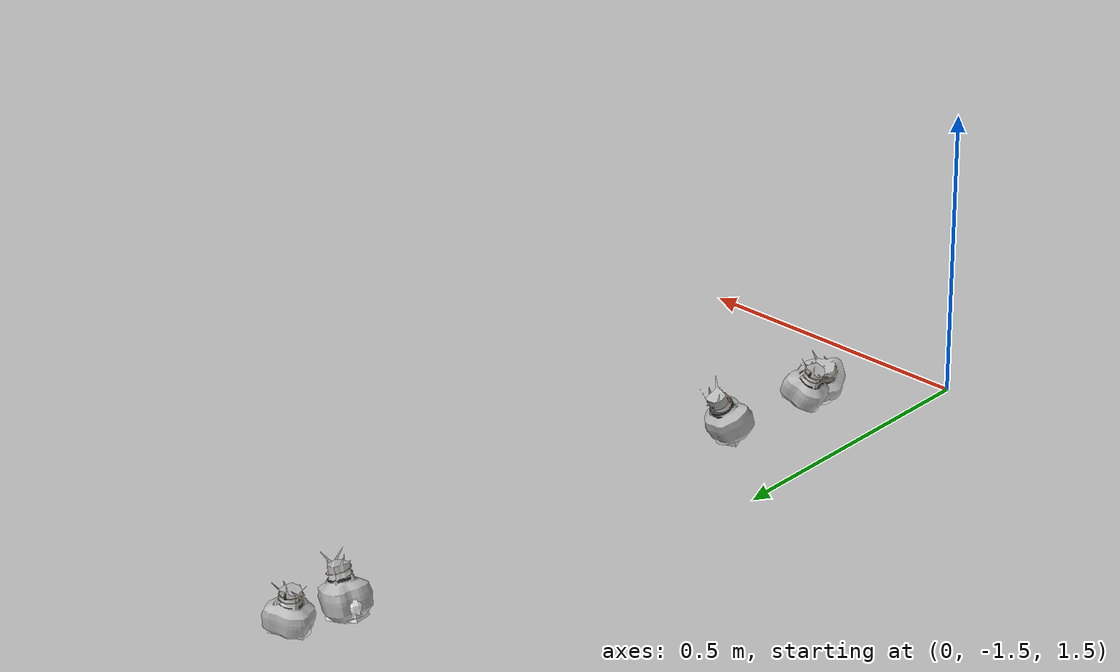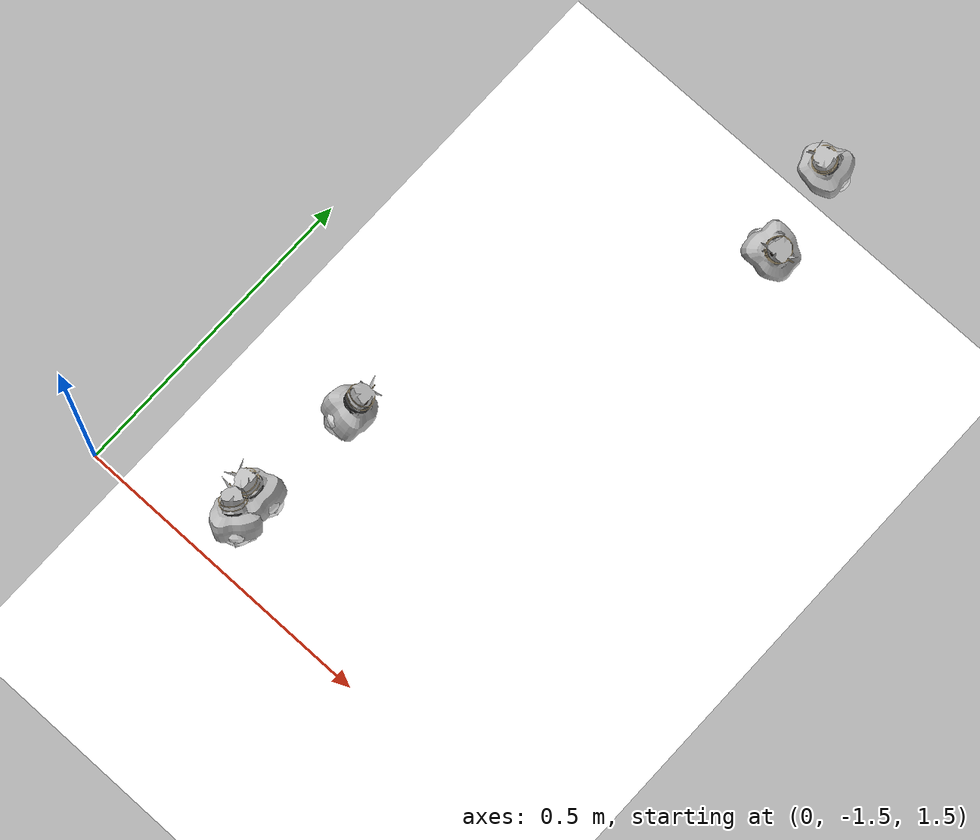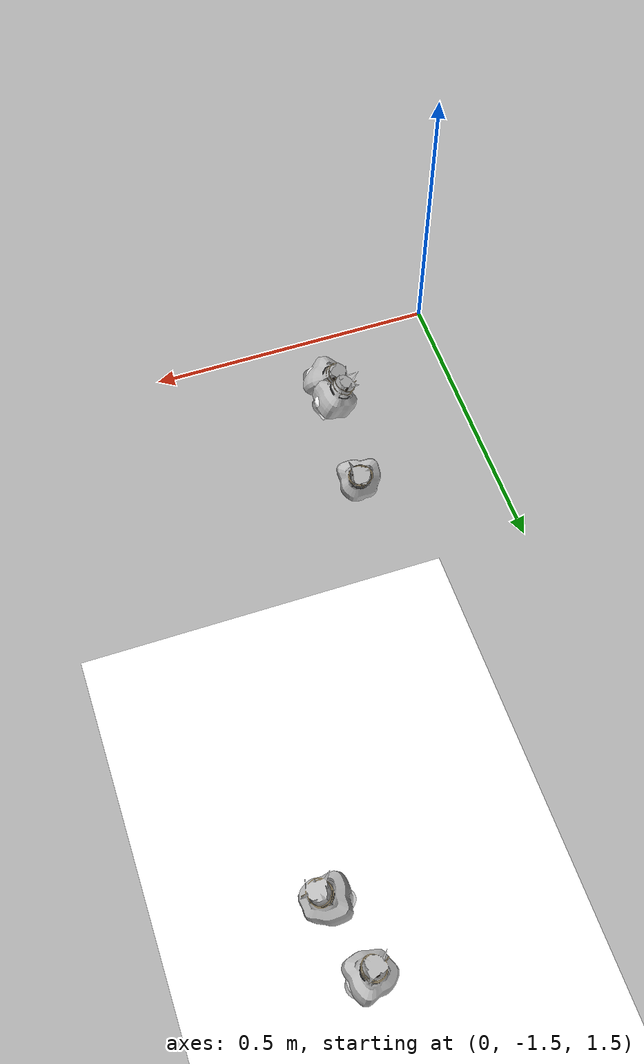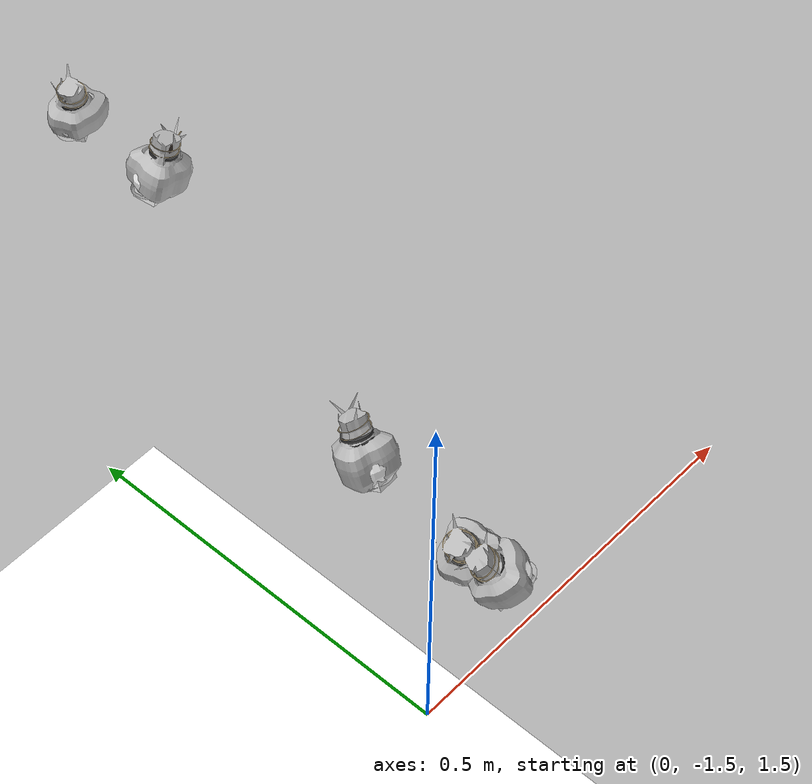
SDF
<sdf version="1.11">
 <world name="peach_orchard">
  <model name="ground">
   <static>true</static>
   <link name="link">
    <visual name="soil">
     <geometry><plane><normal>0 0 1</normal><size>32 22</size></plane></geometry>
     <material>
      <ambient>1 1 1 1</ambient>
      <diffuse>1 1 1 1</diffuse>
      <specular>0.1 0.1 0.1 1</specular>
      <pbr>
       <metal>
        <albedo_map>textures/soil_albedo.png</albedo_map>
        <normal_map type="tangent">textures/soil_normal.png</normal_map>
        <roughness>0.95</roughness>
        <metalness>0</metalness>
       </metal>
      </pbr>
     </material>
    </visual>
    <collision name="c_soil">
     <geometry><plane><normal>0 0 1</normal><size>32 22</size></plane></geometry>
    </collision>
   </link>
  </model>
  <model name="peach_tree_r2_t2_08">
   <pose>0.22 -1.43729 1.45 0 0.599076 2.44117</pose>
   <static>true</static>
   <link name="bag">
    <visual name="bag_mesh">
     <pose>0 0 0.038286 0 0 0</pose>
     <geometry>
      <mesh><uri>model://peach_sim/meshes/bagged_peach.glb</uri><scale>0.97067 1.10928 0.870137</scale></mesh>
     </geometry>
    </visual>
    <visual name="body">
     <pose>0 0 0.020286 0 0 0</pose>
     <geometry><ellipsoid><radii>0.0364001 0.0288413 0.0219089</radii></ellipsoid></geometry>
     <material>
      <ambient>1 1 1 1</ambient>
      <diffuse>1 1 1 1</diffuse>
      <specular>0.1 0.1 0.1 1</specular>
      <pbr>
       <metal>
        <albedo_map>textures/paper_bag_albedo.png</albedo_map>
        <normal_map type="tangent">textures/paper_bag_normal.png</normal_map>
        <roughness>0.72</roughness>
        <metalness>0</metalness>
       </metal>
      </pbr>
     </material>
    </visual>
    <visual name="bottom_fold">
     <pose>0 0 0.012 0 0 0.35</pose>
     <geometry><box><size>0.0564202 0.0331675 0.022</size></box></geometry>
     <material>
      <ambient>1 1 1 1</ambient>
      <diffuse>1 1 1 1</diffuse>
      <specular>0.1 0.1 0.1 1</specular>
      <pbr>
       <metal>
        <albedo_map>textures/paper_bag_albedo.png</albedo_map>
        <normal_map type="tangent">textures/paper_bag_normal.png</normal_map>
        <roughness>0.8</roughness>
        <metalness>0</metalness>
       </metal>
      </pbr>
     </material>
    </visual>
    <visual name="fruit">
     <pose>0 0 0.0196312 0 0 0</pose>
     <geometry><sphere><radius>0.0266564</radius></sphere></geometry>
     <material>
      <ambient>1 1 1 1</ambient>
      <diffuse>1 1 1 1</diffuse>
      <specular>0.1 0.1 0.1 1</specular>
      <pbr>
       <metal>
        <albedo_map>textures/fruit_skin_albedo.png</albedo_map>
        <normal_map type="tangent">textures/fruit_skin_normal.png</normal_map>
        <roughness>0.55</roughness>
        <metalness>0</metalness>
       </metal>
      </pbr>
     </material>
    </visual>
    <visual name="neck">
     <pose>0 0 0.0495721 0 0 0</pose>
     <geometry><cylinder><radius>0.013</radius><length>0.018</length></cylinder></geometry>
     <material>
      <ambient>1 1 1 1</ambient>
      <diffuse>1 1 1 1</diffuse>
      <specular>0.1 0.1 0.1 1</specular>
      <pbr>
       <metal>
        <albedo_map>textures/paper_bag_albedo.png</albedo_map>
        <normal_map type="tangent">textures/paper_bag_normal.png</normal_map>
        <roughness>0.75</roughness>
        <metalness>0</metalness>
       </metal>
      </pbr>
     </material>
    </visual>
    <visual name="gather">
     <pose>0 0 0.0305721 0 0 0</pose>
     <geometry><cylinder><radius>0.019</radius><length>0.02</length></cylinder></geometry>
     <material>
      <ambient>1 1 1 1</ambient>
      <diffuse>1 1 1 1</diffuse>
      <specular>0.1 0.1 0.1 1</specular>
      <pbr>
       <metal>
        <albedo_map>textures/paper_bag_albedo.png</albedo_map>
        <normal_map type="tangent">textures/paper_bag_normal.png</normal_map>
        <roughness>0.8</roughness>
        <metalness>0</metalness>
       </metal>
      </pbr>
     </material>
    </visual>
    <visual name="inner_paper">
     <pose>0 0 0.0545721 0 0 0</pose>
     <geometry><cylinder><radius>0.01</radius><length>0.008</length></cylinder></geometry>
     <material>
      <ambient>0.180392 0.14902 0.133333 1</ambient>
      <diffuse>0.180392 0.14902 0.133333 1</diffuse>
      <specular>0.1 0.1 0.1 1</specular>
     </material>
    </visual>
    <visual name="wire_0">
     <pose>0 0 0.0445721 0 0 0</pose>
     <geometry><cylinder><radius>0.0205</radius><length>0.0035</length></cylinder></geometry>
     <material>
      <ambient>0.25 0.25 0.25 1</ambient>
      <diffuse>0.25 0.25 0.25 1</diffuse>
      <specular>0.1 0.1 0.1 1</specular>
     </material>
    </visual>
    <visual name="wire_1">
     <pose>0 0 0.0515721 0 0 0</pose>
     <geometry><cylinder><radius>0.0205</radius><length>0.0035</length></cylinder></geometry>
     <material>
      <ambient>0.25 0.25 0.25 1</ambient>
      <diffuse>0.25 0.25 0.25 1</diffuse>
      <specular>0.1 0.1 0.1 1</specular>
     </material>
    </visual>
    <visual name="wire_tail">
     <pose>0.01 0 0.0525721 0 0.521618 0</pose>
     <geometry><cylinder><radius>0.0012</radius><length>0.026</length></cylinder></geometry>
     <material>
      <ambient>0.25 0.25 0.25 1</ambient>
      <diffuse>0.25 0.25 0.25 1</diffuse>
      <specular>0.1 0.1 0.1 1</specular>
     </material>
    </visual>
    <collision name="c_body">
     <pose>0 0 0.020286 0 0 0</pose>
     <geometry><cylinder><radius>0.0364001</radius><length>0.0405721</length></cylinder></geometry>
    </collision>
   </link>
  </model>
  <model name="peach_tree_r2_t2_09">
   <pose>0.22 -1.37916 1.45 0 0.483069 -3.07197</pose>
   <static>true</static>
   <link name="bag">
    <visual name="bag_mesh">
     <pose>0 0 0.0386958 0 0 -0</pose>
     <geometry>
      <mesh><uri>model://peach_sim/meshes/bagged_peach.glb</uri><scale>0.962592 1.04461 0.879451</scale></mesh>
     </geometry>
    </visual>
    <visual name="body">
     <pose>0 0 0.0206958 0 0 0</pose>
     <geometry><ellipsoid><radii>0.0360972 0.02716 0.0223515</radii></ellipsoid></geometry>
     <material>
      <ambient>1 1 1 1</ambient>
      <diffuse>1 1 1 1</diffuse>
      <specular>0.1 0.1 0.1 1</specular>
      <pbr>
       <metal>
        <albedo_map>textures/paper_bag_albedo.png</albedo_map>
        <normal_map type="tangent">textures/paper_bag_normal.png</normal_map>
        <roughness>0.72</roughness>
        <metalness>0</metalness>
       </metal>
      </pbr>
     </material>
    </visual>
    <visual name="bottom_fold">
     <pose>0 0 0.012 0 0 0.35</pose>
     <geometry><box><size>0.0559507 0.031234 0.022</size></box></geometry>
     <material>
      <ambient>1 1 1 1</ambient>
      <diffuse>1 1 1 1</diffuse>
      <specular>0.1 0.1 0.1 1</specular>
      <pbr>
       <metal>
        <albedo_map>textures/paper_bag_albedo.png</albedo_map>
        <normal_map type="tangent">textures/paper_bag_normal.png</normal_map>
        <roughness>0.8</roughness>
        <metalness>0</metalness>
       </metal>
      </pbr>
     </material>
    </visual>
    <visual name="fruit">
     <pose>0 0 0.0219081 0 0 0</pose>
     <geometry><sphere><radius>0.0290244</radius></sphere></geometry>
     <material>
      <ambient>1 1 1 1</ambient>
      <diffuse>1 1 1 1</diffuse>
      <specular>0.1 0.1 0.1 1</specular>
      <pbr>
       <metal>
        <albedo_map>textures/fruit_skin_albedo.png</albedo_map>
        <normal_map type="tangent">textures/fruit_skin_normal.png</normal_map>
        <roughness>0.55</roughness>
        <metalness>0</metalness>
       </metal>
      </pbr>
     </material>
    </visual>
    <visual name="neck">
     <pose>0 0 0.0503917 0 0 0</pose>
     <geometry><cylinder><radius>0.013</radius><length>0.018</length></cylinder></geometry>
     <material>
      <ambient>1 1 1 1</ambient>
      <diffuse>1 1 1 1</diffuse>
      <specular>0.1 0.1 0.1 1</specular>
      <pbr>
       <metal>
        <albedo_map>textures/paper_bag_albedo.png</albedo_map>
        <normal_map type="tangent">textures/paper_bag_normal.png</normal_map>
        <roughness>0.75</roughness>
        <metalness>0</metalness>
       </metal>
      </pbr>
     </material>
    </visual>
    <visual name="gather">
     <pose>0 0 0.0313917 0 0 0</pose>
     <geometry><cylinder><radius>0.019</radius><length>0.02</length></cylinder></geometry>
     <material>
      <ambient>1 1 1 1</ambient>
      <diffuse>1 1 1 1</diffuse>
      <specular>0.1 0.1 0.1 1</specular>
      <pbr>
       <metal>
        <albedo_map>textures/paper_bag_albedo.png</albedo_map>
        <normal_map type="tangent">textures/paper_bag_normal.png</normal_map>
        <roughness>0.8</roughness>
        <metalness>0</metalness>
       </metal>
      </pbr>
     </material>
    </visual>
    <visual name="inner_paper">
     <pose>0 0 0.0553917 0 0 0</pose>
     <geometry><cylinder><radius>0.01</radius><length>0.008</length></cylinder></geometry>
     <material>
      <ambient>0.180392 0.14902 0.133333 1</ambient>
      <diffuse>0.180392 0.14902 0.133333 1</diffuse>
      <specular>0.1 0.1 0.1 1</specular>
     </material>
    </visual>
    <visual name="wire_0">
     <pose>0 0 0.0453917 0 0 0</pose>
     <geometry><cylinder><radius>0.0205</radius><length>0.0035</length></cylinder></geometry>
     <material>
      <ambient>0.25 0.25 0.25 1</ambient>
      <diffuse>0.25 0.25 0.25 1</diffuse>
      <specular>0.1 0.1 0.1 1</specular>
     </material>
    </visual>
    <visual name="wire_1">
     <pose>0 0 0.0523917 0 0 0</pose>
     <geometry><cylinder><radius>0.0205</radius><length>0.0035</length></cylinder></geometry>
     <material>
      <ambient>0.25 0.25 0.25 1</ambient>
      <diffuse>0.25 0.25 0.25 1</diffuse>
      <specular>0.1 0.1 0.1 1</specular>
     </material>
    </visual>
    <visual name="wire_tail">
     <pose>0.01 0 0.0533917 0 0.521618 0</pose>
     <geometry><cylinder><radius>0.0012</radius><length>0.026</length></cylinder></geometry>
     <material>
      <ambient>0.25 0.25 0.25 1</ambient>
      <diffuse>0.25 0.25 0.25 1</diffuse>
      <specular>0.1 0.1 0.1 1</specular>
     </material>
    </visual>
    <collision name="c_body">
     <pose>0 0 0.0206958 0 0 0</pose>
     <geometry><cylinder><radius>0.0360972</radius><length>0.0413917</length></cylinder></geometry>
    </collision>
   </link>
  </model>
  <model name="peach_tree_r2_t2_10">
   <pose>0.22 -1.21642 1.45 0 0.459376 1.35812</pose>
   <static>true</static>
   <link name="bag">
    <visual name="bag_mesh">
     <pose>0 0 0.0474562 0 0 0</pose>
     <geometry>
      <mesh><uri>model://peach_sim/meshes/bagged_peach.glb</uri><scale>0.916852 1.08954 1.07855</scale></mesh>
     </geometry>
    </visual>
    <visual name="body">
     <pose>0 0 0.0294562 0 0 0</pose>
     <geometry><ellipsoid><radii>0.0343819 0.0283281 0.0318127</radii></ellipsoid></geometry>
     <material>
      <ambient>1 1 1 1</ambient>
      <diffuse>1 1 1 1</diffuse>
      <specular>0.1 0.1 0.1 1</specular>
      <pbr>
       <metal>
        <albedo_map>textures/paper_bag_albedo.png</albedo_map>
        <normal_map type="tangent">textures/paper_bag_normal.png</normal_map>
        <roughness>0.72</roughness>
        <metalness>0</metalness>
       </metal>
      </pbr>
     </material>
    </visual>
    <visual name="bottom_fold">
     <pose>0 0 0.012 0 0 0.35</pose>
     <geometry><box><size>0.053292 0.0325774 0.022</size></box></geometry>
     <material>
      <ambient>1 1 1 1</ambient>
      <diffuse>1 1 1 1</diffuse>
      <specular>0.1 0.1 0.1 1</specular>
      <pbr>
       <metal>
        <albedo_map>textures/paper_bag_albedo.png</albedo_map>
        <normal_map type="tangent">textures/paper_bag_normal.png</normal_map>
        <roughness>0.8</roughness>
        <metalness>0</metalness>
       </metal>
      </pbr>
     </material>
    </visual>
    <visual name="fruit">
     <pose>0 0 0.0216613 0 0 0</pose>
     <geometry><sphere><radius>0.0287677</radius></sphere></geometry>
     <material>
      <ambient>1 1 1 1</ambient>
      <diffuse>1 1 1 1</diffuse>
      <specular>0.1 0.1 0.1 1</specular>
      <pbr>
       <metal>
        <albedo_map>textures/fruit_skin_albedo.png</albedo_map>
        <normal_map type="tangent">textures/fruit_skin_normal.png</normal_map>
        <roughness>0.55</roughness>
        <metalness>0</metalness>
       </metal>
      </pbr>
     </material>
    </visual>
    <visual name="neck">
     <pose>0 0 0.0679124 0 0 0</pose>
     <geometry><cylinder><radius>0.013</radius><length>0.018</length></cylinder></geometry>
     <material>
      <ambient>1 1 1 1</ambient>
      <diffuse>1 1 1 1</diffuse>
      <specular>0.1 0.1 0.1 1</specular>
      <pbr>
       <metal>
        <albedo_map>textures/paper_bag_albedo.png</albedo_map>
        <normal_map type="tangent">textures/paper_bag_normal.png</normal_map>
        <roughness>0.75</roughness>
        <metalness>0</metalness>
       </metal>
      </pbr>
     </material>
    </visual>
    <visual name="gather">
     <pose>0 0 0.0489124 0 0 0</pose>
     <geometry><cylinder><radius>0.019</radius><length>0.02</length></cylinder></geometry>
     <material>
      <ambient>1 1 1 1</ambient>
      <diffuse>1 1 1 1</diffuse>
      <specular>0.1 0.1 0.1 1</specular>
      <pbr>
       <metal>
        <albedo_map>textures/paper_bag_albedo.png</albedo_map>
        <normal_map type="tangent">textures/paper_bag_normal.png</normal_map>
        <roughness>0.8</roughness>
        <metalness>0</metalness>
       </metal>
      </pbr>
     </material>
    </visual>
    <visual name="inner_paper">
     <pose>0 0 0.0729124 0 0 0</pose>
     <geometry><cylinder><radius>0.01</radius><length>0.008</length></cylinder></geometry>
     <material>
      <ambient>0.180392 0.14902 0.133333 1</ambient>
      <diffuse>0.180392 0.14902 0.133333 1</diffuse>
      <specular>0.1 0.1 0.1 1</specular>
     </material>
    </visual>
    <visual name="wire_0">
     <pose>0 0 0.0629124 0 0 0</pose>
     <geometry><cylinder><radius>0.0205</radius><length>0.0035</length></cylinder></geometry>
     <material>
      <ambient>0.25 0.25 0.25 1</ambient>
      <diffuse>0.25 0.25 0.25 1</diffuse>
      <specular>0.1 0.1 0.1 1</specular>
     </material>
    </visual>
    <visual name="wire_1">
     <pose>0 0 0.0699124 0 0 0</pose>
     <geometry><cylinder><radius>0.0205</radius><length>0.0035</length></cylinder></geometry>
     <material>
      <ambient>0.25 0.25 0.25 1</ambient>
      <diffuse>0.25 0.25 0.25 1</diffuse>
      <specular>0.1 0.1 0.1 1</specular>
     </material>
    </visual>
    <visual name="wire_tail">
     <pose>0.01 0 0.0709124 0 0.521618 0</pose>
     <geometry><cylinder><radius>0.0012</radius><length>0.026</length></cylinder></geometry>
     <material>
      <ambient>0.25 0.25 0.25 1</ambient>
      <diffuse>0.25 0.25 0.25 1</diffuse>
      <specular>0.1 0.1 0.1 1</specular>
     </material>
    </visual>
    <collision name="c_body">
     <pose>0 0 0.0294562 0 0 0</pose>
     <geometry><cylinder><radius>0.0343819</radius><length>0.0589124</length></cylinder></geometry>
    </collision>
   </link>
  </model>
  <model name="peach_tree_r2_t3_03">
   <pose>0.476651 -0.425783 1.32182 0 0.124477 -2.96739</pose>
   <static>true</static>
   <link name="bag">
    <visual name="bag_mesh">
     <pose>0 0 0.040647 0 0 -0</pose>
     <geometry>
      <mesh><uri>model://peach_sim/meshes/bagged_peach.glb</uri><scale>1.02007 1.12833 0.923796</scale></mesh>
     </geometry>
    </visual>
    <visual name="body">
     <pose>0 0 0.022647 0 0 0</pose>
     <geometry><ellipsoid><radii>0.0382525 0.0293366 0.0244588</radii></ellipsoid></geometry>
     <material>
      <ambient>1 1 1 1</ambient>
      <diffuse>1 1 1 1</diffuse>
      <specular>0.1 0.1 0.1 1</specular>
      <pbr>
       <metal>
        <albedo_map>textures/paper_bag_albedo.png</albedo_map>
        <normal_map type="tangent">textures/paper_bag_normal.png</normal_map>
        <roughness>0.72</roughness>
        <metalness>0</metalness>
       </metal>
      </pbr>
     </material>
    </visual>
    <visual name="bottom_fold">
     <pose>0 0 0.012 0 0 0.35</pose>
     <geometry><box><size>0.0592914 0.0337371 0.022</size></box></geometry>
     <material>
      <ambient>1 1 1 1</ambient>
      <diffuse>1 1 1 1</diffuse>
      <specular>0.1 0.1 0.1 1</specular>
      <pbr>
       <metal>
        <albedo_map>textures/paper_bag_albedo.png</albedo_map>
        <normal_map type="tangent">textures/paper_bag_normal.png</normal_map>
        <roughness>0.8</roughness>
        <metalness>0</metalness>
       </metal>
      </pbr>
     </material>
    </visual>
    <visual name="fruit">
     <pose>0 0 0.0213229 0 0 0</pose>
     <geometry><sphere><radius>0.0284158</radius></sphere></geometry>
     <material>
      <ambient>1 1 1 1</ambient>
      <diffuse>1 1 1 1</diffuse>
      <specular>0.1 0.1 0.1 1</specular>
      <pbr>
       <metal>
        <albedo_map>textures/fruit_skin_albedo.png</albedo_map>
        <normal_map type="tangent">textures/fruit_skin_normal.png</normal_map>
        <roughness>0.55</roughness>
        <metalness>0</metalness>
       </metal>
      </pbr>
     </material>
    </visual>
    <visual name="neck">
     <pose>0 0 0.0542941 0 0 0</pose>
     <geometry><cylinder><radius>0.013</radius><length>0.018</length></cylinder></geometry>
     <material>
      <ambient>1 1 1 1</ambient>
      <diffuse>1 1 1 1</diffuse>
      <specular>0.1 0.1 0.1 1</specular>
      <pbr>
       <metal>
        <albedo_map>textures/paper_bag_albedo.png</albedo_map>
        <normal_map type="tangent">textures/paper_bag_normal.png</normal_map>
        <roughness>0.75</roughness>
        <metalness>0</metalness>
       </metal>
      </pbr>
     </material>
    </visual>
    <visual name="gather">
     <pose>0 0 0.0352941 0 0 0</pose>
     <geometry><cylinder><radius>0.019</radius><length>0.02</length></cylinder></geometry>
     <material>
      <ambient>1 1 1 1</ambient>
      <diffuse>1 1 1 1</diffuse>
      <specular>0.1 0.1 0.1 1</specular>
      <pbr>
       <metal>
        <albedo_map>textures/paper_bag_albedo.png</albedo_map>
        <normal_map type="tangent">textures/paper_bag_normal.png</normal_map>
        <roughness>0.8</roughness>
        <metalness>0</metalness>
       </metal>
      </pbr>
     </material>
    </visual>
    <visual name="inner_paper">
     <pose>0 0 0.0592941 0 0 0</pose>
     <geometry><cylinder><radius>0.01</radius><length>0.008</length></cylinder></geometry>
     <material>
      <ambient>0.180392 0.14902 0.133333 1</ambient>
      <diffuse>0.180392 0.14902 0.133333 1</diffuse>
      <specular>0.1 0.1 0.1 1</specular>
     </material>
    </visual>
    <visual name="wire_0">
     <pose>0 0 0.0492941 0 0 0</pose>
     <geometry><cylinder><radius>0.0205</radius><length>0.0035</length></cylinder></geometry>
     <material>
      <ambient>0.25 0.25 0.25 1</ambient>
      <diffuse>0.25 0.25 0.25 1</diffuse>
      <specular>0.1 0.1 0.1 1</specular>
     </material>
    </visual>
    <visual name="wire_1">
     <pose>0 0 0.0562941 0 0 0</pose>
     <geometry><cylinder><radius>0.0205</radius><length>0.0035</length></cylinder></geometry>
     <material>
      <ambient>0.25 0.25 0.25 1</ambient>
      <diffuse>0.25 0.25 0.25 1</diffuse>
      <specular>0.1 0.1 0.1 1</specular>
     </material>
    </visual>
    <visual name="wire_tail">
     <pose>0.01 0 0.0572941 0 0.521618 0</pose>
     <geometry><cylinder><radius>0.0012</radius><length>0.026</length></cylinder></geometry>
     <material>
      <ambient>0.25 0.25 0.25 1</ambient>
      <diffuse>0.25 0.25 0.25 1</diffuse>
      <specular>0.1 0.1 0.1 1</specular>
     </material>
    </visual>
    <collision name="c_body">
     <pose>0 0 0.022647 0 0 0</pose>
     <geometry><cylinder><radius>0.0382525</radius><length>0.0452941</length></cylinder></geometry>
    </collision>
   </link>
  </model>
  <model name="peach_tree_r2_t3_04">
   <pose>0.48535 -0.565804 1.2781 0 0.255302 -0.15871</pose>
   <static>true</static>
   <link name="bag">
    <visual name="bag_mesh">
     <pose>0 0 0.0479237 0 0 -0</pose>
     <geometry>
      <mesh><uri>model://peach_sim/meshes/bagged_peach.glb</uri><scale>1.07961 1.16192 1.08917</scale></mesh>
     </geometry>
    </visual>
    <visual name="body">
     <pose>0 0 0.0299237 0 0 0</pose>
     <geometry><ellipsoid><radii>0.0404855 0.03021 0.0323176</radii></ellipsoid></geometry>
     <material>
      <ambient>1 1 1 1</ambient>
      <diffuse>1 1 1 1</diffuse>
      <specular>0.1 0.1 0.1 1</specular>
      <pbr>
       <metal>
        <albedo_map>textures/paper_bag_albedo.png</albedo_map>
        <normal_map type="tangent">textures/paper_bag_normal.png</normal_map>
        <roughness>0.72</roughness>
        <metalness>0</metalness>
       </metal>
      </pbr>
     </material>
    </visual>
    <visual name="bottom_fold">
     <pose>0 0 0.012 0 0 0.35</pose>
     <geometry><box><size>0.0627525 0.0347415 0.022</size></box></geometry>
     <material>
      <ambient>1 1 1 1</ambient>
      <diffuse>1 1 1 1</diffuse>
      <specular>0.1 0.1 0.1 1</specular>
      <pbr>
       <metal>
        <albedo_map>textures/paper_bag_albedo.png</albedo_map>
        <normal_map type="tangent">textures/paper_bag_normal.png</normal_map>
        <roughness>0.8</roughness>
        <metalness>0</metalness>
       </metal>
      </pbr>
     </material>
    </visual>
    <visual name="fruit">
     <pose>0 0 0.017628 0 0 0</pose>
     <geometry><sphere><radius>0.0245731</radius></sphere></geometry>
     <material>
      <ambient>1 1 1 1</ambient>
      <diffuse>1 1 1 1</diffuse>
      <specular>0.1 0.1 0.1 1</specular>
      <pbr>
       <metal>
        <albedo_map>textures/fruit_skin_albedo.png</albedo_map>
        <normal_map type="tangent">textures/fruit_skin_normal.png</normal_map>
        <roughness>0.55</roughness>
        <metalness>0</metalness>
       </metal>
      </pbr>
     </material>
    </visual>
    <visual name="neck">
     <pose>0 0 0.0688474 0 0 0</pose>
     <geometry><cylinder><radius>0.013</radius><length>0.018</length></cylinder></geometry>
     <material>
      <ambient>1 1 1 1</ambient>
      <diffuse>1 1 1 1</diffuse>
      <specular>0.1 0.1 0.1 1</specular>
      <pbr>
       <metal>
        <albedo_map>textures/paper_bag_albedo.png</albedo_map>
        <normal_map type="tangent">textures/paper_bag_normal.png</normal_map>
        <roughness>0.75</roughness>
        <metalness>0</metalness>
       </metal>
      </pbr>
     </material>
    </visual>
    <visual name="gather">
     <pose>0 0 0.0498474 0 0 0</pose>
     <geometry><cylinder><radius>0.019</radius><length>0.02</length></cylinder></geometry>
     <material>
      <ambient>1 1 1 1</ambient>
      <diffuse>1 1 1 1</diffuse>
      <specular>0.1 0.1 0.1 1</specular>
      <pbr>
       <metal>
        <albedo_map>textures/paper_bag_albedo.png</albedo_map>
        <normal_map type="tangent">textures/paper_bag_normal.png</normal_map>
        <roughness>0.8</roughness>
        <metalness>0</metalness>
       </metal>
      </pbr>
     </material>
    </visual>
    <visual name="inner_paper">
     <pose>0 0 0.0738474 0 0 0</pose>
     <geometry><cylinder><radius>0.01</radius><length>0.008</length></cylinder></geometry>
     <material>
      <ambient>0.180392 0.14902 0.133333 1</ambient>
      <diffuse>0.180392 0.14902 0.133333 1</diffuse>
      <specular>0.1 0.1 0.1 1</specular>
     </material>
    </visual>
    <visual name="wire_0">
     <pose>0 0 0.0638474 0 0 0</pose>
     <geometry><cylinder><radius>0.0205</radius><length>0.0035</length></cylinder></geometry>
     <material>
      <ambient>0.25 0.25 0.25 1</ambient>
      <diffuse>0.25 0.25 0.25 1</diffuse>
      <specular>0.1 0.1 0.1 1</specular>
     </material>
    </visual>
    <visual name="wire_1">
     <pose>0 0 0.0708474 0 0 0</pose>
     <geometry><cylinder><radius>0.0205</radius><length>0.0035</length></cylinder></geometry>
     <material>
      <ambient>0.25 0.25 0.25 1</ambient>
      <diffuse>0.25 0.25 0.25 1</diffuse>
      <specular>0.1 0.1 0.1 1</specular>
     </material>
    </visual>
    <visual name="wire_tail">
     <pose>0.01 0 0.0718474 0 0.521618 0</pose>
     <geometry><cylinder><radius>0.0012</radius><length>0.026</length></cylinder></geometry>
     <material>
      <ambient>0.25 0.25 0.25 1</ambient>
      <diffuse>0.25 0.25 0.25 1</diffuse>
      <specular>0.1 0.1 0.1 1</specular>
     </material>
    </visual>
    <collision name="c_body">
     <pose>0 0 0.0299237 0 0 0</pose>
     <geometry><cylinder><radius>0.0404855</radius><length>0.0598474</length></cylinder></geometry>
    </collision>
   </link>
  </model>
 </world>
</sdf>
